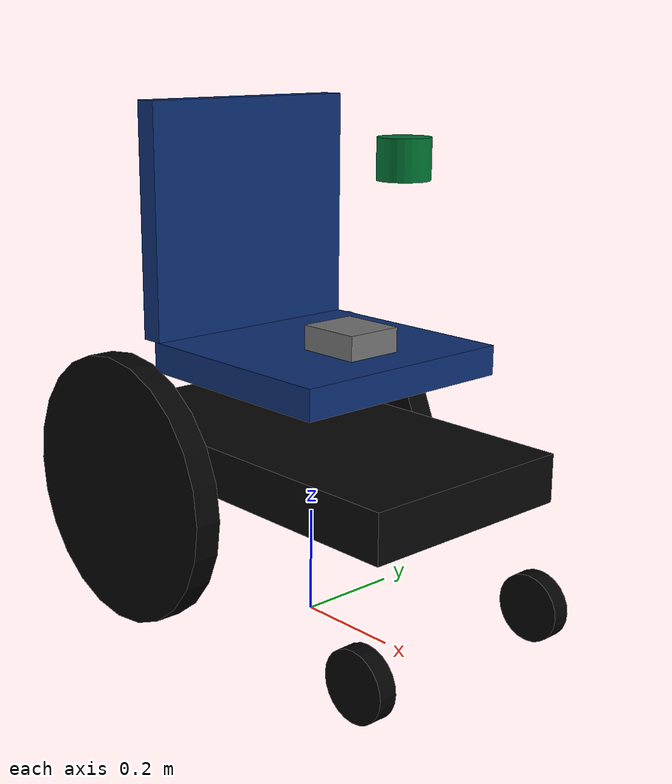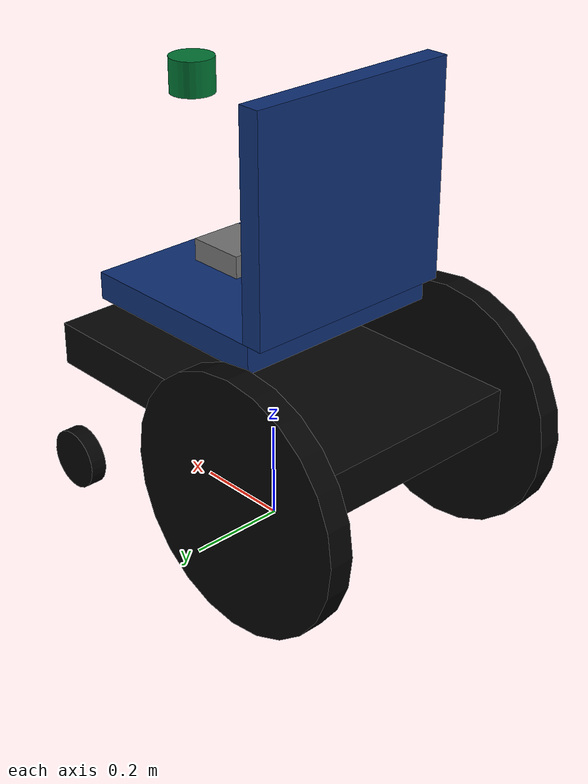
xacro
<?xml version="1.0"?>
<robot name="wheelchair" xmlns:xacro="http://www.ros.org/wiki/xacro">
  <xacro:include filename="$(find wheelchair_description)/urdf/dimensions.xacro"/>

  <material name="frame_black"><color rgba="0.02 0.02 0.02 1.0"/></material>
  <material name="seat_blue"><color rgba="0.05 0.18 0.45 1.0"/></material>
  <material name="wheel_dark"><color rgba="0.01 0.01 0.01 1.0"/></material>
  <material name="electronics_gray"><color rgba="0.45 0.45 0.45 1.0"/></material>
  <material name="lidar_green"><color rgba="0.0 0.45 0.20 1.0"/></material>

  <xacro:macro name="box_inertial" params="mass x y z">
    <inertial>
      <origin xyz="0 0 0" rpy="0 0 0"/>
      <mass value="${mass}"/>
      <inertia ixx="${mass * (y*y + z*z) / 12.0}" ixy="0" ixz="0"
               iyy="${mass * (x*x + z*z) / 12.0}" iyz="0"
               izz="${mass * (x*x + y*y) / 12.0}"/>
    </inertial>
  </xacro:macro>

  <xacro:macro name="cylinder_inertial" params="mass radius length axis">
    <inertial>
      <origin xyz="0 0 0" rpy="0 0 0"/>
      <mass value="${mass}"/>
      <xacro:if value="${axis == 'y'}">
        <inertia ixx="${mass * (3*radius*radius + length*length) / 12.0}" ixy="0" ixz="0"
                 iyy="${0.5 * mass * radius * radius}" iyz="0"
                 izz="${mass * (3*radius*radius + length*length) / 12.0}"/>
      </xacro:if>
      <xacro:unless value="${axis == 'y'}">
        <inertia ixx="${mass * (3*radius*radius + length*length) / 12.0}" ixy="0" ixz="0"
                 iyy="${mass * (3*radius*radius + length*length) / 12.0}" iyz="0"
                 izz="${0.5 * mass * radius * radius}"/>
      </xacro:unless>
    </inertial>
  </xacro:macro>

  <link name="base_footprint"/>

  <joint name="base_footprint_joint" type="fixed">
    <parent link="base_footprint"/>
    <child link="base_link"/>
    <origin xyz="0 0 ${rear_wheel_radius}" rpy="0 0 0"/>
  </joint>

  <link name="base_link">
    <visual>
      <origin xyz="0 0 0.065" rpy="0 0 0"/>
      <geometry><box size="${base_box_length} ${base_box_width} ${base_box_height}"/></geometry>
      <material name="frame_black"/>
    </visual>
    <collision name="base_link_collision">
      <origin xyz="0 0 0.065" rpy="0 0 0"/>
      <geometry><box size="${base_box_length} ${base_box_width} ${base_box_height}"/></geometry>
    </collision>
    <xacro:box_inertial mass="${wheelchair_mass * 0.45}" x="${base_box_length}" y="${base_box_width}" z="${base_box_height}"/>
  </link>

  <link name="seat_link">
    <visual>
      <origin xyz="0 0 ${seat_thickness / 2.0}" rpy="0 0 0"/>
      <geometry><box size="${seat_depth} ${seat_width} ${seat_thickness}"/></geometry>
      <material name="seat_blue"/>
    </visual>
    <collision>
      <origin xyz="0 0 ${seat_thickness / 2.0}" rpy="0 0 0"/>
      <geometry><box size="${seat_depth} ${seat_width} ${seat_thickness}"/></geometry>
    </collision>
    <xacro:box_inertial mass="${wheelchair_mass * 0.12}" x="${seat_depth}" y="${seat_width}" z="${seat_thickness}"/>
  </link>

  <joint name="seat_joint" type="fixed">
    <parent link="base_link"/>
    <child link="seat_link"/>
    <origin xyz="0.03 0 ${seat_height - rear_wheel_radius}" rpy="0 0 0"/>
  </joint>

  <link name="backrest_link">
    <visual>
      <origin xyz="0 0 ${backrest_height / 2.0}" rpy="0 0 0"/>
      <geometry><box size="${backrest_thickness} ${seat_width} ${backrest_height}"/></geometry>
      <material name="seat_blue"/>
    </visual>
    <collision>
      <origin xyz="0 0 ${backrest_height / 2.0}" rpy="0 0 0"/>
      <geometry><box size="${backrest_thickness} ${seat_width} ${backrest_height}"/></geometry>
    </collision>
    <xacro:box_inertial mass="${wheelchair_mass * 0.10}" x="${backrest_thickness}" y="${seat_width}" z="${backrest_height}"/>
  </link>

  <joint name="backrest_joint" type="fixed">
    <parent link="base_link"/>
    <child link="backrest_link"/>
    <origin xyz="${-seat_depth / 2.0 + 0.02} 0 ${seat_height - rear_wheel_radius + seat_thickness}" rpy="0 0 0"/>
  </joint>

  <link name="nuc_link">
    <visual>
      <origin xyz="0 0 0" rpy="0 0 0"/>
      <geometry><box size="${nuc_length} ${nuc_width} ${nuc_height}"/></geometry>
      <material name="electronics_gray"/>
    </visual>
    <collision>
      <origin xyz="0 0 0" rpy="0 0 0"/>
      <geometry><box size="${nuc_length} ${nuc_width} ${nuc_height}"/></geometry>
    </collision>
    <xacro:box_inertial mass="0.9" x="${nuc_length}" y="${nuc_width}" z="${nuc_height}"/>
  </link>

  <joint name="nuc_joint" type="fixed">
    <parent link="base_link"/>
    <child link="nuc_link"/>
    <origin xyz="0.10 0 ${seat_height - rear_wheel_radius + seat_thickness + nuc_height / 2.0}" rpy="0 0 0"/>
  </joint>

  <link name="lidar_link">
    <visual>
      <origin xyz="0 0 0" rpy="0 0 0"/>
      <geometry><cylinder radius="${lidar_radius}" length="${lidar_height}"/></geometry>
      <material name="lidar_green"/>
    </visual>
    <collision>
      <origin xyz="0 0 0" rpy="0 0 0"/>
      <geometry><cylinder radius="${lidar_radius}" length="${lidar_height}"/></geometry>
    </collision>
    <xacro:cylinder_inertial mass="0.4" radius="${lidar_radius}" length="${lidar_height}" axis="z"/>
  </link>

  <joint name="lidar_joint" type="fixed">
    <parent link="base_link"/>
    <child link="lidar_link"/>
    <origin xyz="0.22 0 ${wheelchair_height - rear_wheel_radius - lidar_height / 2.0}" rpy="0 0 0"/>
  </joint>
  <!-- REP-103 simulation frame: +x forward, +y left, +z up. This fixed
       extrinsic is simulation-only and is not measured hardware calibration. -->
  <link name="imu_link"/>

  <joint name="imu_joint" type="fixed">
    <parent link="base_link"/>
    <child link="imu_link"/>
    <origin xyz="${imu_mount_x} ${imu_mount_y} ${imu_mount_z}" rpy="0 0 0"/>
  </joint>

  <link name="rear_left_wheel_link">
    <visual>
      <origin xyz="0 0 0" rpy="1.57079632679 0 0"/>
      <geometry><cylinder radius="${rear_wheel_radius}" length="${rear_wheel_thickness}"/></geometry>
      <material name="wheel_dark"/>
    </visual>
    <collision>
      <origin xyz="0 0 0" rpy="1.57079632679 0 0"/>
      <geometry><cylinder radius="${rear_wheel_radius}" length="${rear_wheel_thickness}"/></geometry>
    </collision>
    <xacro:cylinder_inertial mass="1.1" radius="${rear_wheel_radius}" length="${rear_wheel_thickness}" axis="y"/>
  </link>

  <joint name="rear_left_wheel_joint" type="continuous">
    <parent link="base_link"/>
    <child link="rear_left_wheel_link"/>
    <origin xyz="${rear_wheel_x} ${rear_wheel_track / 2.0} 0" rpy="0 0 0"/>
    <axis xyz="0 1 0"/>
  </joint>

  <link name="rear_right_wheel_link">
    <visual>
      <origin xyz="0 0 0" rpy="1.57079632679 0 0"/>
      <geometry><cylinder radius="${rear_wheel_radius}" length="${rear_wheel_thickness}"/></geometry>
      <material name="wheel_dark"/>
    </visual>
    <collision>
      <origin xyz="0 0 0" rpy="1.57079632679 0 0"/>
      <geometry><cylinder radius="${rear_wheel_radius}" length="${rear_wheel_thickness}"/></geometry>
    </collision>
    <xacro:cylinder_inertial mass="1.1" radius="${rear_wheel_radius}" length="${rear_wheel_thickness}" axis="y"/>
  </link>

  <joint name="rear_right_wheel_joint" type="continuous">
    <parent link="base_link"/>
    <child link="rear_right_wheel_link"/>
    <origin xyz="${rear_wheel_x} ${-rear_wheel_track / 2.0} 0" rpy="0 0 0"/>
    <axis xyz="0 1 0"/>
  </joint>

  <link name="front_left_caster_link">
    <visual>
      <origin xyz="0 0 0" rpy="1.57079632679 0 0"/>
      <geometry><cylinder radius="${front_wheel_radius}" length="${front_wheel_thickness}"/></geometry>
      <material name="wheel_dark"/>
    </visual>
    <collision>
      <origin xyz="0 0 0" rpy="1.57079632679 0 0"/>
      <geometry><sphere radius="${front_wheel_radius}"/></geometry>
    </collision>
    <xacro:cylinder_inertial mass="0.25" radius="${front_wheel_radius}" length="${front_wheel_thickness}" axis="y"/>
  </link>

  <joint name="front_left_caster_joint" type="fixed">
    <parent link="base_link"/>
    <child link="front_left_caster_link"/>
    <origin xyz="${front_caster_x} ${front_caster_track / 2.0} ${front_wheel_radius - rear_wheel_radius}" rpy="0 0 0"/>
  </joint>

  <link name="front_right_caster_link">
    <visual>
      <origin xyz="0 0 0" rpy="1.57079632679 0 0"/>
      <geometry><cylinder radius="${front_wheel_radius}" length="${front_wheel_thickness}"/></geometry>
      <material name="wheel_dark"/>
    </visual>
    <collision>
      <origin xyz="0 0 0" rpy="1.57079632679 0 0"/>
      <!-- See front_left_caster_link collision note. -->
      <geometry><sphere radius="${front_wheel_radius}"/></geometry>
    </collision>
    <xacro:cylinder_inertial mass="0.25" radius="${front_wheel_radius}" length="${front_wheel_thickness}" axis="y"/>
  </link>

  <joint name="front_right_caster_joint" type="fixed">
    <parent link="base_link"/>
    <child link="front_right_caster_link"/>
    <origin xyz="${front_caster_x} ${-front_caster_track / 2.0} ${front_wheel_radius - rear_wheel_radius}" rpy="0 0 0"/>
  </joint>

  <transmission name="rear_left_wheel_transmission">
    <type>transmission_interface/SimpleTransmission</type>
    <joint name="rear_left_wheel_joint">
      <hardwareInterface>hardware_interface/VelocityJointInterface</hardwareInterface>
    </joint>
    <actuator name="rear_left_wheel_motor">
      <hardwareInterface>hardware_interface/VelocityJointInterface</hardwareInterface>
      <mechanicalReduction>1</mechanicalReduction>
    </actuator>
  </transmission>

  <transmission name="rear_right_wheel_transmission">
    <type>transmission_interface/SimpleTransmission</type>
    <joint name="rear_right_wheel_joint">
      <hardwareInterface>hardware_interface/VelocityJointInterface</hardwareInterface>
    </joint>
    <actuator name="rear_right_wheel_motor">
      <hardwareInterface>hardware_interface/VelocityJointInterface</hardwareInterface>
      <mechanicalReduction>1</mechanicalReduction>
    </actuator>
  </transmission>

  <gazebo reference="base_link">
    <material>Gazebo/Black</material>
    <mu1>0.8</mu1>
    <mu2>0.8</mu2>
    <!-- Simulation-only physical contact evidence. It is consumed by the
         qualification collector and never grants command authority. -->
    <sensor type="contact" name="simulation_wheelchair_contact">
      <always_on>true</always_on>
      <update_rate>100</update_rate>
      <contact>
        <collision>base_link_collision</collision>
      </contact>
      <plugin name="gazebo_ros_simulation_contact" filename="libgazebo_ros_bumper.so">
        <bumperTopicName>/simulation/contacts</bumperTopicName>
        <frameName>base_footprint</frameName>
      </plugin>
    </sensor>
  </gazebo>
  <gazebo reference="rear_left_wheel_link">
    <material>Gazebo/Black</material>
    <mu1>1.2</mu1>
    <mu2>1.2</mu2>
  </gazebo>
  <gazebo reference="rear_right_wheel_link">
    <material>Gazebo/Black</material>
    <mu1>1.2</mu1>
    <mu2>1.2</mu2>
  </gazebo>
  <gazebo reference="front_left_caster_link">
    <material>Gazebo/Black</material>
    <mu1>0.02</mu1>
    <mu2>0.02</mu2>
  </gazebo>
  <gazebo reference="front_right_caster_link">
    <material>Gazebo/Black</material>
    <mu1>0.02</mu1>
    <mu2>0.02</mu2>
  </gazebo>
  <gazebo reference="lidar_link">
    <sensor type="ray" name="simulation_mid360_like_block_laser">
      <always_on>true</always_on>
      <update_rate>${simulation_lidar_rate}</update_rate>
      <visualize>true</visualize>
      <ray>
        <scan>
          <horizontal>
            <samples>144</samples>
            <resolution>1</resolution>
            <min_angle>-3.14159265359</min_angle>
            <max_angle>3.14159265359</max_angle>
          </horizontal>
          <vertical>
            <samples>4</samples>
            <resolution>1</resolution>
            <min_angle>-0.10</min_angle>
            <max_angle>-0.02</max_angle>
          </vertical>
        </scan>
        <range>
          <min>${simulation_lidar_min_range}</min>
          <max>${simulation_lidar_max_range}</max>
          <resolution>0.02</resolution>
        </range>
      </ray>
      <!-- gazebo_ros_block_laser emits ordinary x/y/z[/intensity] fields.
           The required simulation-only adapter owns the canonical perception topic. -->
      <plugin name="gazebo_ros_simulation_lidar_points" filename="libgazebo_ros_block_laser.so">
        <topicName>/simulation/sensors/lidar/raw</topicName>
        <frameName>lidar_link</frameName>
        <gaussianNoise>0.01</gaussianNoise>
        <hokuyoMinIntensity>0</hokuyoMinIntensity>
      </plugin>
    </sensor>
  </gazebo>
  <gazebo reference="imu_link">
    <!-- Simulation evidence only; this generic model is not a hardware IMU claim. -->
    <sensor type="imu" name="simulation_rep103_imu">
      <always_on>true</always_on>
      <update_rate>${simulation_imu_rate}</update_rate>
      <visualize>false</visualize>
      <plugin name="gazebo_ros_simulation_imu" filename="libgazebo_ros_imu_sensor.so">
        <topicName>/simulation/sensors/imu/raw</topicName>
        <frameName>imu_link</frameName>
        <updateRateHZ>${simulation_imu_rate}</updateRateHZ>
        <gaussianNoise>${simulation_imu_noise}</gaussianNoise>
      </plugin>
    </sensor>
  </gazebo>
  <gazebo>
    <plugin name="gazebo_ros_control" filename="libgazebo_ros_control.so">
      <robotNamespace>/</robotNamespace>
    </plugin>
  </gazebo>
</robot>

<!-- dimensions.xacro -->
<robot xmlns:xacro="http://www.ros.org/wiki/xacro">
  <!-- Metric constants transcribed from the source wheelchair dimensions image. -->
  <xacro:property name="wheelchair_length" value="0.970"/>
  <xacro:property name="wheelchair_height" value="0.910"/>
  <xacro:property name="wheelchair_width" value="0.600"/>
  <xacro:property name="seat_width" value="0.445"/>
  <xacro:property name="seat_height" value="0.475"/>
  <xacro:property name="front_wheel_radius" value="0.0635"/>
  <xacro:property name="rear_wheel_radius" value="0.254"/>
  <xacro:property name="wheelchair_mass" value="13.5"/>
  <xacro:property name="folded_length" value="0.730"/>
  <xacro:property name="folded_width" value="0.300"/>

  <!-- Derived simulation dimensions. These are kept here so tests can validate extents without xacro. -->
  <xacro:property name="base_box_length" value="0.780"/>
  <xacro:property name="base_box_width" value="0.430"/>
  <xacro:property name="base_box_height" value="0.090"/>
  <xacro:property name="rear_wheel_thickness" value="0.050"/>
  <xacro:property name="front_wheel_thickness" value="0.035"/>
  <xacro:property name="rear_wheel_track" value="0.550"/>
  <xacro:property name="front_caster_track" value="0.440"/>
  <xacro:property name="rear_wheel_x" value="-0.215"/>
  <xacro:property name="front_caster_x" value="0.360"/>
  <xacro:property name="seat_depth" value="0.420"/>
  <xacro:property name="seat_thickness" value="0.055"/>
  <xacro:property name="backrest_height" value="0.430"/>
  <xacro:property name="backrest_thickness" value="0.045"/>
  <xacro:property name="nuc_length" value="0.120"/>
  <xacro:property name="nuc_width" value="0.110"/>
  <xacro:property name="nuc_height" value="0.045"/>
  <xacro:property name="lidar_radius" value="0.045"/>
  <xacro:property name="lidar_height" value="0.070"/>
  <!-- Simulation-only sensor extrinsics and characteristics. These values are
       not measured calibration and do not describe physical sensor fidelity. -->
  <xacro:property name="imu_mount_x" value="0.100"/>
  <xacro:property name="imu_mount_y" value="0.000"/>
  <xacro:property name="imu_mount_z" value="0.570"/>
  <xacro:property name="simulation_lidar_rate" value="10.0"/>
  <xacro:property name="simulation_lidar_min_range" value="0.10"/>
  <xacro:property name="simulation_lidar_max_range" value="40.0"/>
  <xacro:property name="simulation_imu_rate" value="200.0"/>
  <xacro:property name="simulation_imu_noise" value="0.0002"/>
</robot>
